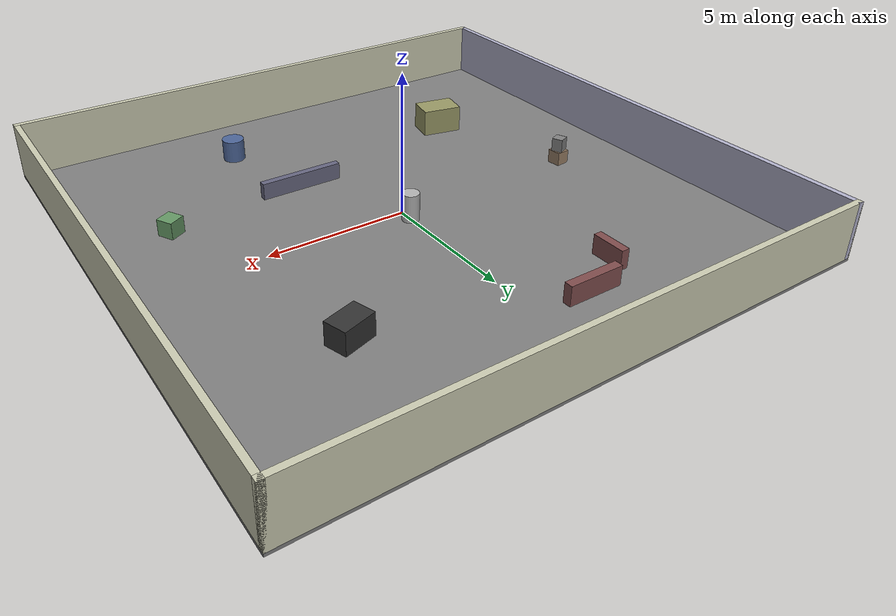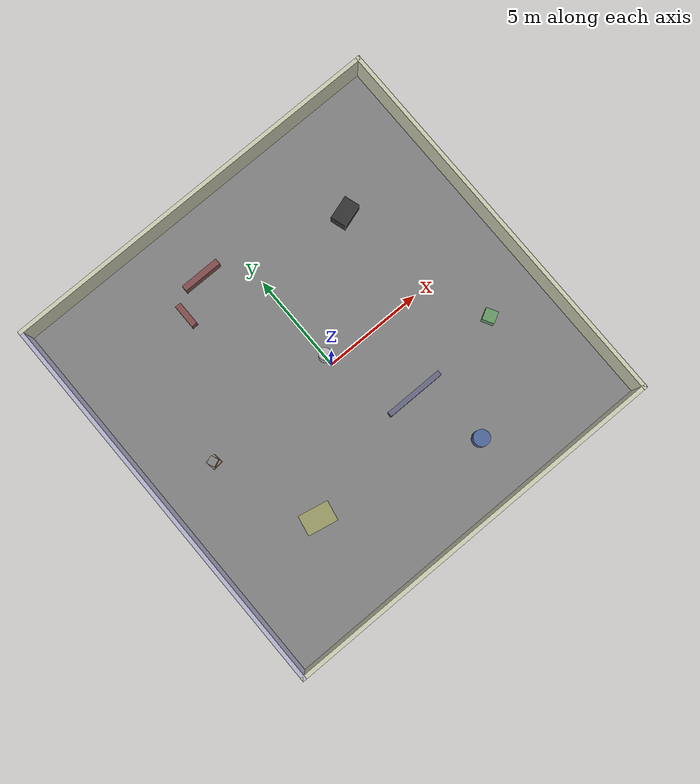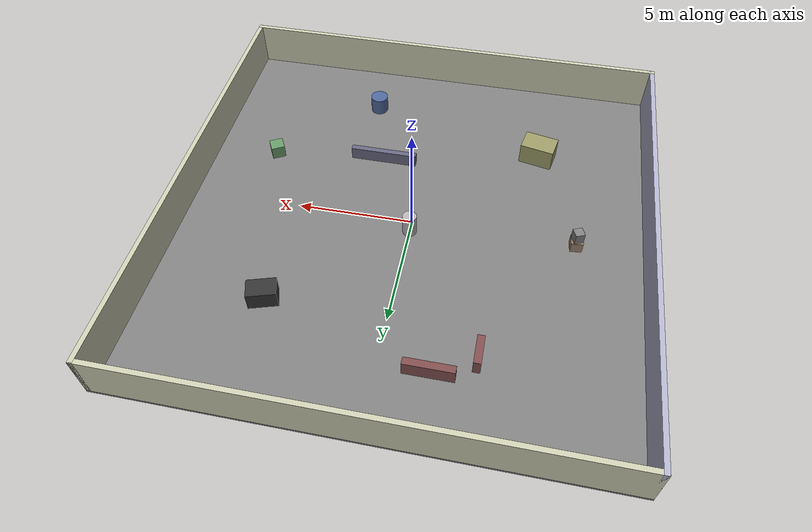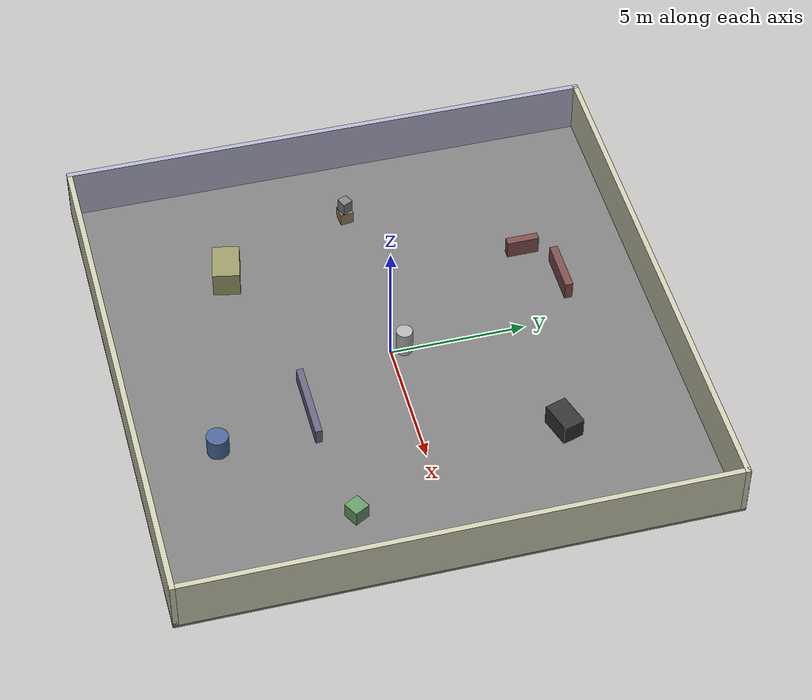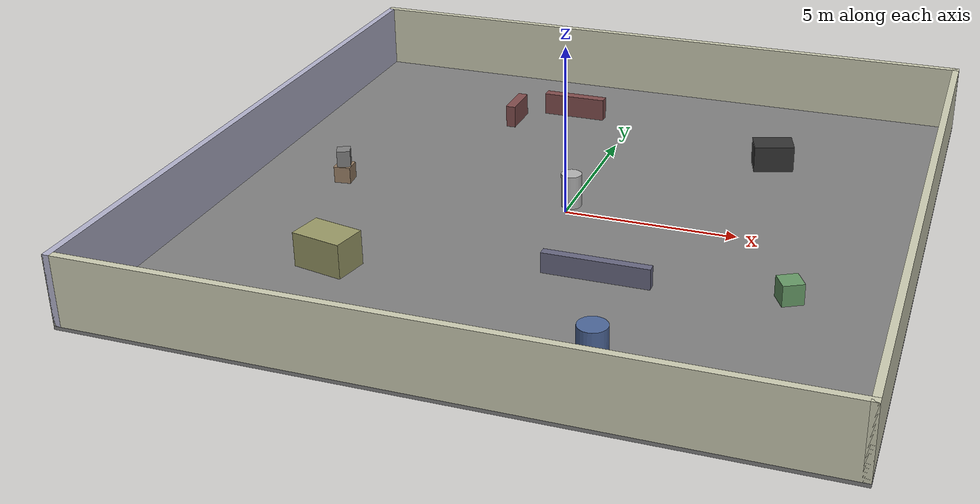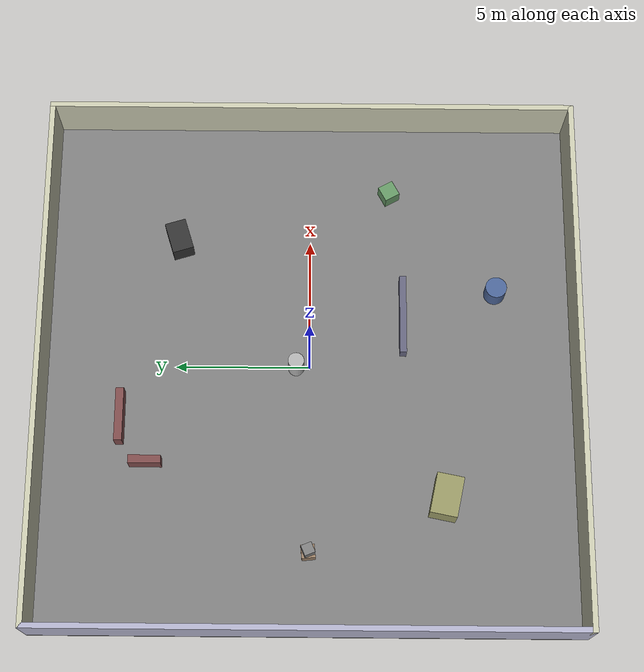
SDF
<?xml version="1.0"?>
<sdf version="1.8">
  <world name="ball_arena">
    <plugin
      filename="gz-sim-physics-system"
      name="gz::sim::systems::Physics">
    </plugin>
    <plugin
      filename="gz-sim-sensors-system"
      name="gz::sim::systems::Sensors">
      <render_engine>ogre2</render_engine>
    </plugin>
    <plugin
      filename="gz-sim-scene-broadcaster-system"
      name="gz::sim::systems::SceneBroadcaster">
    </plugin>
    <plugin
      filename="gz-sim-user-commands-system"
      name="gz::sim::systems::UserCommands">
    </plugin>
    <plugin filename="gz-sim-imu-system"
        name="gz::sim::systems::Imu">
    </plugin>

    <!-- Lighting -->
    <light name="sun" type="directional">
      <cast_shadows>true</cast_shadows>
      <pose>0 0 10 0 0 0</pose>
      <diffuse>0.8 0.8 0.8 1</diffuse>
      <specular>0.2 0.2 0.2 1</specular>
      <attenuation>
        <range>1000</range>
        <constant>0.9</constant>
        <linear>0.01</linear>
        <quadratic>0.001</quadratic>
      </attenuation>
      <direction>-0.5 0.1 -0.9</direction>
    </light>

    <!-- Indoor ceiling light -->
    <light name="ceiling_light" type="point">
      <pose>0 0 2.5 0 0 0</pose>
      <diffuse>0.5 0.5 0.4 1</diffuse>
      <specular>0.1 0.1 0.1 1</specular>
      <attenuation>
        <range>25</range>
        <constant>0.5</constant>
        <linear>0.1</linear>
        <quadratic>0.01</quadratic>
      </attenuation>
    </light>

    <!-- Floor -->
    <model name="floor">
      <static>true</static>
      <pose>0 0 -0.05 0 0 0</pose>
      <link name="link">
        <collision name="collision">
          <geometry>
            <box><size>20 20 0.1</size></box>
          </geometry>
        </collision>
        <visual name="visual">
          <geometry>
            <box><size>20 20 0.1</size></box>
          </geometry>
          <material>
            <ambient>0.4 0.4 0.4 1</ambient>
            <diffuse>0.5 0.5 0.5 1</diffuse>
          </material>
        </visual>
      </link>
    </model>

    <!-- Room Walls (10m x 10m room, 2m high walls) -->

    <!-- North Wall -->
    <model name="wall_north">
      <static>true</static>
      <pose>0 9.9 1 0 0 0</pose>
      <link name="link">
        <collision name="collision">
          <geometry>
            <box><size>20 0.2 2</size></box>
          </geometry>
        </collision>
        <visual name="visual">
          <geometry>
            <box><size>20 0.2 2</size></box>
          </geometry>
          <material>
            <ambient>0.7 0.7 0.6 1</ambient>
            <diffuse>0.8 0.8 0.7 1</diffuse>
          </material>
        </visual>
      </link>
    </model>

    <!-- South Wall -->
    <model name="wall_south">
      <static>true</static>
      <pose>0 -9.9 1 0 0 0</pose>
      <link name="link">
        <collision name="collision">
          <geometry>
            <box><size>20 0.2 2</size></box>
          </geometry>
        </collision>
        <visual name="visual">
          <geometry>
            <box><size>20 0.2 2</size></box>
          </geometry>
          <material>
            <ambient>0.7 0.7 0.6 1</ambient>
            <diffuse>0.8 0.8 0.7 1</diffuse>
          </material>
        </visual>
      </link>
    </model>

    <!-- East Wall -->
    <model name="wall_east">
      <static>true</static>
      <pose>9.9 0 1 0 0 0</pose>
      <link name="link">
        <collision name="collision">
          <geometry>
            <box><size>0.2 20 2</size></box>
          </geometry>
        </collision>
        <visual name="visual">
          <geometry>
            <box><size>0.2 20 2</size></box>
          </geometry>
          <material>
            <ambient>0.7 0.7 0.6 1</ambient>
            <diffuse>0.8 0.8 0.7 1</diffuse>
          </material>
        </visual>
      </link>
    </model>

    <!-- West Wall -->
    <model name="wall_west">
      <static>true</static>
      <pose>-9.9 0 1 0 0 0</pose>
      <link name="link">
        <collision name="collision">
          <geometry>
            <box><size>0.2 20 2</size></box>
          </geometry>
        </collision>
        <visual name="visual">
          <geometry>
            <box><size>0.2 20 2</size></box>
          </geometry>
          <material>
            <ambient>0.6 0.6 0.7 1</ambient>
            <diffuse>0.7 0.7 0.8 1</diffuse>
          </material>
        </visual>
      </link>
    </model>

    <!-- Obstacles -->

    <!-- Large box 1 -->
    <model name="box_1">
      <static>true</static>
      <pose>5 5 0.4 0 0 0.3</pose>
      <link name="link">
        <collision name="collision">
          <geometry>
            <box><size>1.2 0.8 0.8</size></box>
          </geometry>
        </collision>
        <visual name="visual">
          <geometry>
            <box><size>1.2 0.8 0.8</size></box>
          </geometry>
          <material>
            <ambient>0.15 0.15 0.15 1</ambient>
            <diffuse>0.2 0.2 0.2 1</diffuse>
          </material>
        </visual>
      </link>
    </model>

    <!-- Large box 2 -->
    <model name="box_2">
      <static>true</static>
      <pose>-5 -5 0.5 0 0 -0.2</pose>
      <link name="link">
        <collision name="collision">
          <geometry>
            <box><size>1.5 1.0 1.0</size></box>
          </geometry>
        </collision>
        <visual name="visual">
          <geometry>
            <box><size>1.5 1.0 1.0</size></box>
          </geometry>
          <material>
            <ambient>0.5 0.5 0.3 1</ambient>
            <diffuse>0.6 0.6 0.4 1</diffuse>
          </material>
        </visual>
      </link>
    </model>

    <!-- Small box 3 -->
    <model name="box_3">
      <static>true</static>
      <pose>7 -3 0.3 0 0 0.5</pose>
      <link name="link">
        <collision name="collision">
          <geometry>
            <box><size>0.6 0.6 0.6</size></box>
          </geometry>
        </collision>
        <visual name="visual">
          <geometry>
            <box><size>0.6 0.6 0.6</size></box>
          </geometry>
          <material>
            <ambient>0.3 0.5 0.3 1</ambient>
            <diffuse>0.4 0.6 0.4 1</diffuse>
          </material>
        </visual>
      </link>
    </model>

    <!-- L-shaped barrier part 1 -->
    <model name="barrier_L1">
      <static>true</static>
      <pose>-2 7 0.35 0 0 0</pose>
      <link name="link">
        <collision name="collision">
          <geometry>
            <box><size>2.0 0.3 0.7</size></box>
          </geometry>
        </collision>
        <visual name="visual">
          <geometry>
            <box><size>2.0 0.3 0.7</size></box>
          </geometry>
          <material>
            <ambient>0.4 0.2 0.2 1</ambient>
            <diffuse>0.5 0.3 0.3 1</diffuse>
          </material>
        </visual>
      </link>
    </model>

    <!-- L-shaped barrier part 2 -->
    <model name="barrier_L2">
      <static>true</static>
      <pose>-3.7 6 0.35 0 0 0</pose>
      <link name="link">
        <collision name="collision">
          <geometry>
            <box><size>0.3 1.2 0.7</size></box>
          </geometry>
        </collision>
        <visual name="visual">
          <geometry>
            <box><size>0.3 1.2 0.7</size></box>
          </geometry>
          <material>
            <ambient>0.4 0.2 0.2 1</ambient>
            <diffuse>0.5 0.3 0.3 1</diffuse>
          </material>
        </visual>
      </link>
    </model>

    <!-- Cylinder obstacle -->
    <model name="cylinder_1">
      <static>true</static>
      <pose>3 -7 0.4 0 0 0</pose>
      <link name="link">
        <collision name="collision">
          <geometry>
            <cylinder>
              <radius>0.4</radius>
              <length>0.8</length>
            </cylinder>
          </geometry>
        </collision>
        <visual name="visual">
          <geometry>
            <cylinder>
              <radius>0.4</radius>
              <length>0.8</length>
            </cylinder>
          </geometry>
          <material>
            <ambient>0.2 0.3 0.5 1</ambient>
            <diffuse>0.3 0.4 0.6 1</diffuse>
          </material>
        </visual>
      </link>
    </model>

    <!-- Stack box 1 -->
    <model name="stack_1">
      <static>true</static>
      <pose>-7 0 0.25 0 0 0.1</pose>
      <link name="link">
        <collision name="collision">
          <geometry>
            <box><size>0.5 0.5 0.5</size></box>
          </geometry>
        </collision>
        <visual name="visual">
          <geometry>
            <box><size>0.5 0.5 0.5</size></box>
          </geometry>
          <material>
            <ambient>0.5 0.4 0.3 1</ambient>
            <diffuse>0.6 0.5 0.4 1</diffuse>
          </material>
        </visual>
      </link>
    </model>

    <!-- Stack box 2 (on top) -->
    <model name="stack_2">
      <static>true</static>
      <pose>-7 0 0.75 0 0 0.4</pose>
      <link name="link">
        <collision name="collision">
          <geometry>
            <box><size>0.4 0.4 0.5</size></box>
          </geometry>
        </collision>
        <visual name="visual">
          <geometry>
            <box><size>0.4 0.4 0.5</size></box>
          </geometry>
          <material>
            <ambient>0.5 0.5 0.5 1</ambient>
            <diffuse>0.5 0.5 0.5 1</diffuse>
          </material>
        </visual>
      </link>
    </model>

    <!-- Long barrier near south -->
    <model name="barrier_south">
      <static>true</static>
      <pose>2 -3.5 0.3 0 0 0</pose>
      <link name="link">
        <collision name="collision">
          <geometry>
            <box><size>3.0 0.25 0.6</size></box>
          </geometry>
        </collision>
        <visual name="visual">
          <geometry>
            <box><size>3.0 0.25 0.6</size></box>
          </geometry>
          <material>
            <ambient>0.3 0.3 0.4 1</ambient>
            <diffuse>0.4 0.4 0.5 1</diffuse>
          </material>
        </visual>
      </link>
    </model>

    <!-- Central pillar -->
    <model name="pillar">
      <static>true</static>
      <pose>0 0.5 0.5 0 0 0</pose>
      <link name="link">
        <collision name="collision">
          <geometry>
            <cylinder>
              <radius>0.3</radius>
              <length>1.0</length>
            </cylinder>
          </geometry>
        </collision>
        <visual name="visual">
          <geometry>
            <cylinder>
              <radius>0.3</radius>
              <length>1.0</length>
            </cylinder>
          </geometry>
          <material>
            <ambient>0.6 0.6 0.6 1</ambient>
            <diffuse>0.7 0.7 0.7 1</diffuse>
          </material>
        </visual>
      </link>
    </model>

    <!-- Ball Launcher Platform -->

    <!-- Balls are spawned dynamically by ball_launcher_node at random positions -->

  </world>
</sdf>
